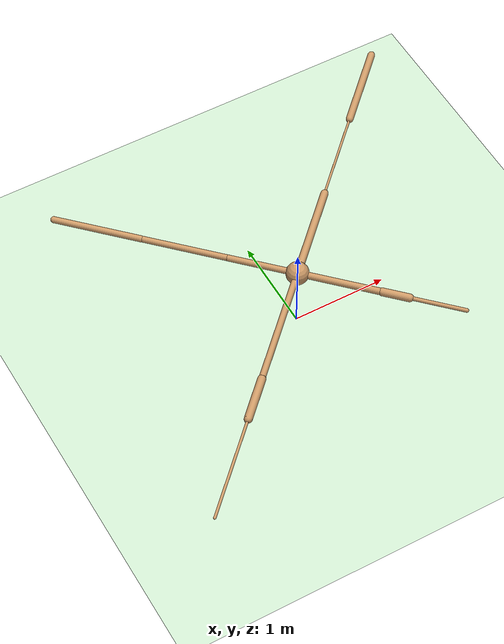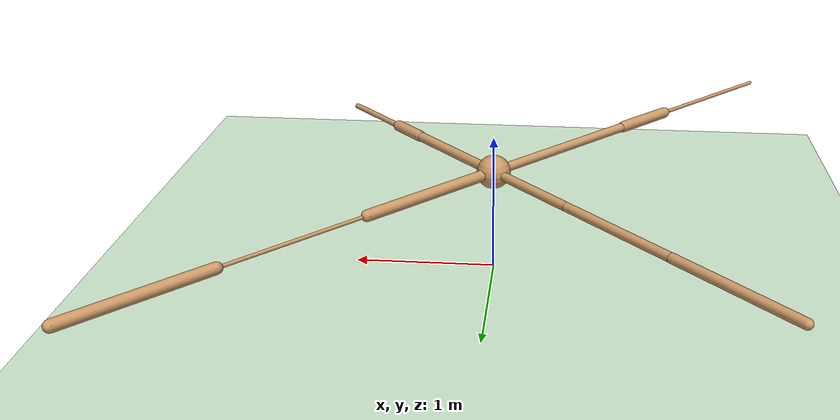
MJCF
<mujoco model="ant">
  <compiler angle="degree" coordinate="local" inertiafromgeom="true" />
  <option integrator="RK4" timestep="0.01" />
  <custom>
    <numeric data="0.0 0.0 0.55 1.0 0.0 0.0 0.0 0.0 1.0 0.0 -1.0 0.0 -1.0 0.0 1.0" name="init_qpos" />
  </custom>
  <default>
    <joint armature="1" damping="1" limited="true" />
    <geom conaffinity="0" condim="3" density="5.0" friction="1 0.5 0.5" margin="0.01" rgba="0.8 0.6 0.4 1" />
  </default>
  <asset>
    <texture builtin="gradient" height="100" rgb1="1 1 1" rgb2="0 0 0" type="skybox" width="100" />
    <texture builtin="flat" height="1278" mark="cross" markrgb="1 1 1" name="texgeom" random="0.01" rgb1="0.8 0.6 0.4" rgb2="0.8 0.6 0.4" type="cube" width="127" />
    <texture builtin="checker" height="100" name="texplane" rgb1="0 0 0" rgb2="0.8 0.8 0.8" type="2d" width="100" />
    <material name="MatPlane" reflectance="0.5" shininess="1" specular="1" texrepeat="60 60" texture="texplane" />
    <material name="geom" texture="texgeom" texuniform="true" />
  </asset>
  <worldbody>
    <light cutoff="100" diffuse="1 1 1" dir="-0 0 -1.3" directional="true" exponent="1" pos="0 0 1.3" specular=".1 .1 .1" />
    <geom conaffinity="1" condim="3" material="MatPlane" name="floor" pos="0 0 0" rgba="0.8 0.9 0.8 1" size="40 40 40" type="plane" />
    <body name="torso" pos="0 0 0.75">
      <camera name="track" mode="trackcom" pos="0 -11 5" xyaxes="1 0 0 0 0.5 1" />
      <geom name="torso_geom" pos="0 0 0" size="0.11800500005483627" type="sphere" />
      <joint armature="0" damping="0" limited="false" margin="0.01" name="root" pos="0 0 0" type="free" />
      <body name="front_left_leg" pos="0 0 0">
        <geom fromto="0 0 0 0.7462868690490723 0.7462868690490723 0" name="aux_1_geom" size="0.03942513093352318" type="capsule" />
        <body name="aux_1" pos="0.7462868690490723 0.7462868690490723 0">
          <joint axis="0 0 1" name="hip_1" pos="0.0 0.0 0.0" range="-30 30" type="hinge" />
          <geom fromto="0 0 0 0.7330855131149292 0.7330855131149292 0" name="left_leg_geom" size="0.0121498117223382" type="capsule" />
          <body name="left_leg_geom_aux" pos="0.7330855131149292 0.7330855131149292 0">
            <joint axis="-1 1 0" name="ankle_1" pos="0.0 0.0 0.0" range="30 70" type="hinge" />
            <geom fromto="0 0 0 0.6632360219955444 0.6632360219955444 0" name="left_ankle_geom" size="0.03866007551550865" type="capsule" />
          </body>
        </body>
      </body>
      <body name="front_right_leg" pos="0 0 0">
        <geom fromto="0 0 0 -0.505966305732727 0.505966305732727 0" name="aux_2_geom" size="0.03244590759277344" type="capsule" />
        <body name="aux_2" pos="-0.505966305732727 0.505966305732727 0">
          <joint axis="0 0 1" name="hip_2" pos="0.0 0.0 0.0" range="-30 30" type="hinge" />
          <geom fromto="0 0 0 -0.6258981227874756 0.6258981227874756 0" name="right_leg_geom" size="0.03174440935254097" type="capsule" />
          <body name="right_leg_geom_aux" pos="-0.6258981227874756 0.6258981227874756 0">
            <joint axis="1 1 0" name="ankle_2" pos="0.0 0.0 0.0" range="-70 -30" type="hinge" />
            <geom fromto="0 0 0 -0.6505968570709229 0.6505968570709229 0" name="right_ankle_geom" size="0.03328235447406769" type="capsule" />
          </body>
        </body>
      </body>
      <body name="back_leg" pos="0 0 0">
        <geom fromto="0 0 0 -0.9295644164085388 -0.9295644164085388 0" name="aux_3_geom" size="0.03314824402332306" type="capsule" />
        <body name="aux_3" pos="-0.9295644164085388 -0.9295644164085388 0">
          <joint axis="0 0 1" name="hip_3" pos="0.0 0.0 0.0" range="-30 30" type="hinge" />
          <geom fromto="0 0 0 -0.3352002501487732 -0.3352002501487732 0" name="back_leg_geom" size="0.041837178170681" type="capsule" />
          <body name="back_leg_geom_aux" pos="-0.3352002501487732 -0.3352002501487732 0">
            <joint axis="-1 1 0" name="ankle_3" pos="0.0 0.0 0.0" range="-70 -30" type="hinge" />
            <geom fromto="0 0 0 -0.7934199571609497 -0.7934199571609497 0" name="third_ankle_geom" size="0.013654328882694244" type="capsule" />
          </body>
        </body>
      </body>
      <body name="right_back_leg" pos="0 0 0">
        <geom fromto="0 0 0 0.6043609380722046 -0.6043609380722046 0" name="aux_4_geom" size="0.03532633185386658" type="capsule" />
        <body name="aux_4" pos="0.6043609380722046 -0.6043609380722046 0">
          <joint axis="0 0 1" name="hip_4" pos="0.0 0.0 0.0" range="-30 30" type="hinge" />
          <geom fromto="0 0 0 0.19428305327892303 -0.19428305327892303 0" name="rightback_leg_geom" size="0.04138120263814926" type="capsule" />
          <body name="rightback_leg_geom_aux" pos="0.19428305327892303 -0.19428305327892303 0">
            <joint axis="1 1 0" name="ankle_4" pos="0.0 0.0 0.0" range="30 70" type="hinge" />
            <geom fromto="0 0 0 0.4025770425796509 -0.4025770425796509 0" name="fourth_ankle_geom" size="0.020624354481697083" type="capsule" />
          </body>
        </body>
      </body>
    </body>
  </worldbody>
  <actuator>
    <motor ctrllimited="true" ctrlrange="-1.0 1.0" joint="hip_4" gear="150" />
    <motor ctrllimited="true" ctrlrange="-1.0 1.0" joint="ankle_4" gear="150" />
    <motor ctrllimited="true" ctrlrange="-1.0 1.0" joint="hip_1" gear="150" />
    <motor ctrllimited="true" ctrlrange="-1.0 1.0" joint="ankle_1" gear="150" />
    <motor ctrllimited="true" ctrlrange="-1.0 1.0" joint="hip_2" gear="150" />
    <motor ctrllimited="true" ctrlrange="-1.0 1.0" joint="ankle_2" gear="150" />
    <motor ctrllimited="true" ctrlrange="-1.0 1.0" joint="hip_3" gear="150" />
    <motor ctrllimited="true" ctrlrange="-1.0 1.0" joint="ankle_3" gear="150" />
  </actuator>
</mujoco>
